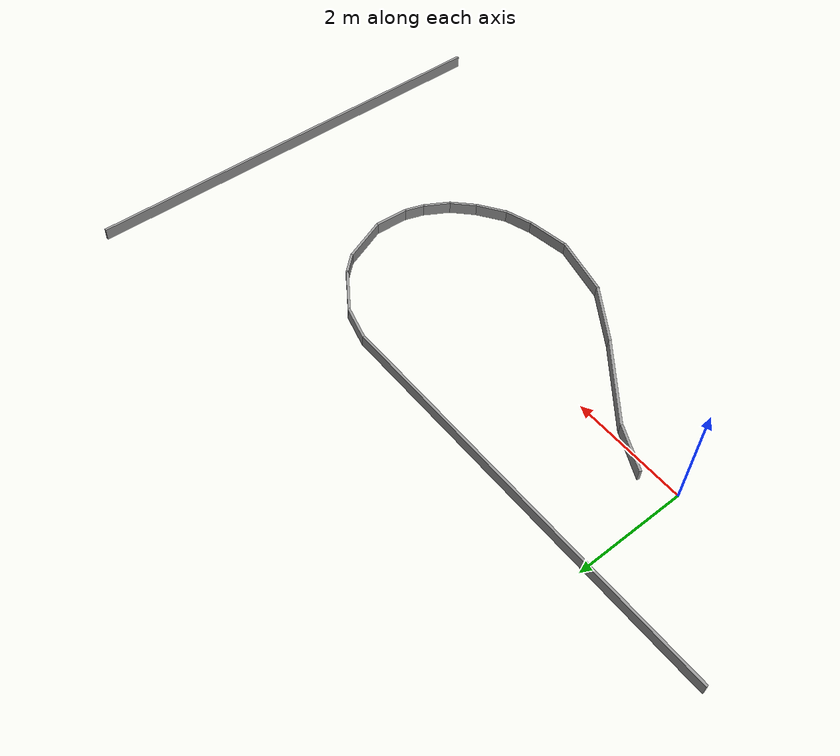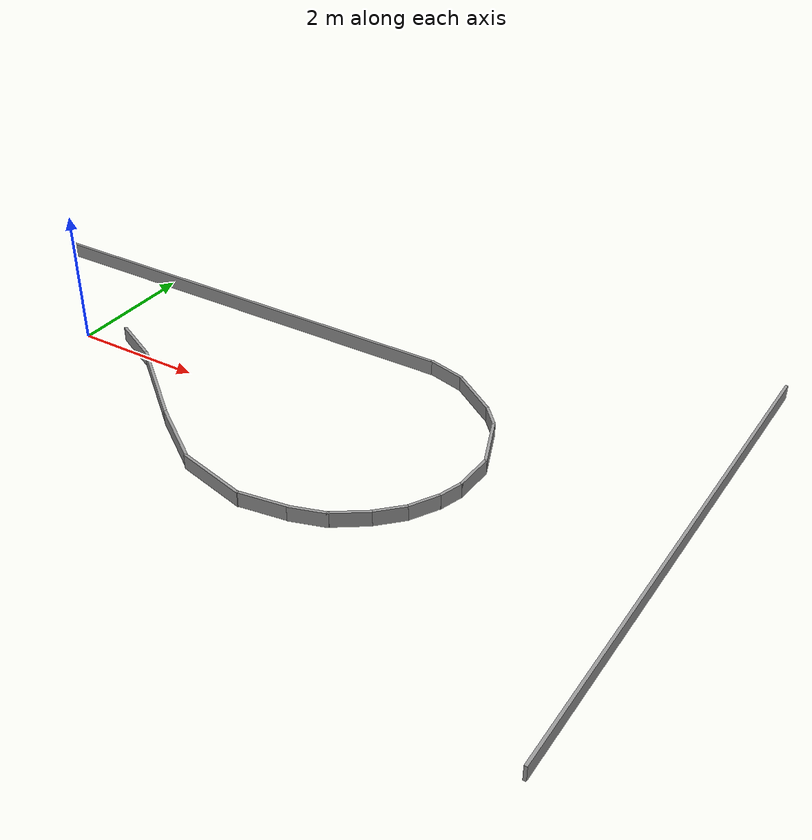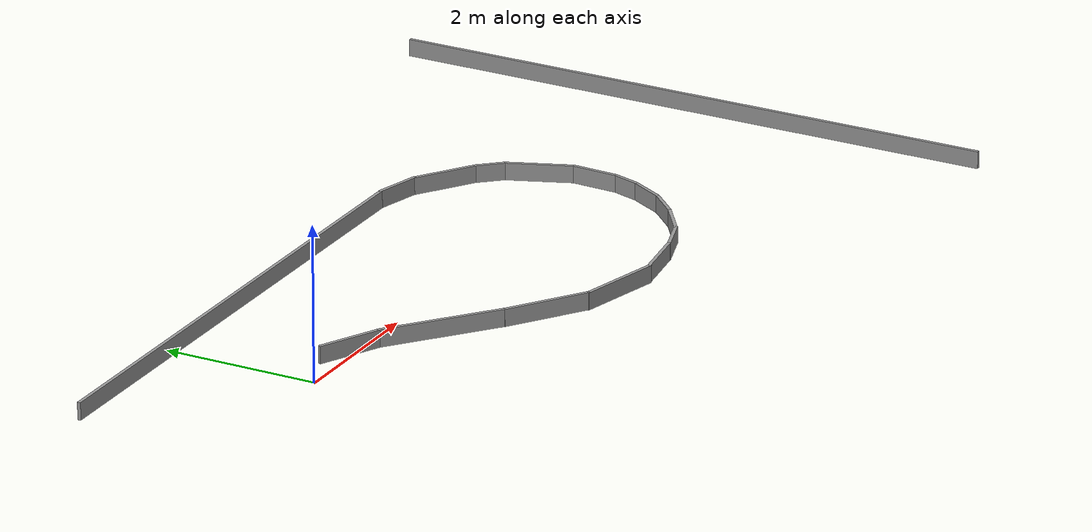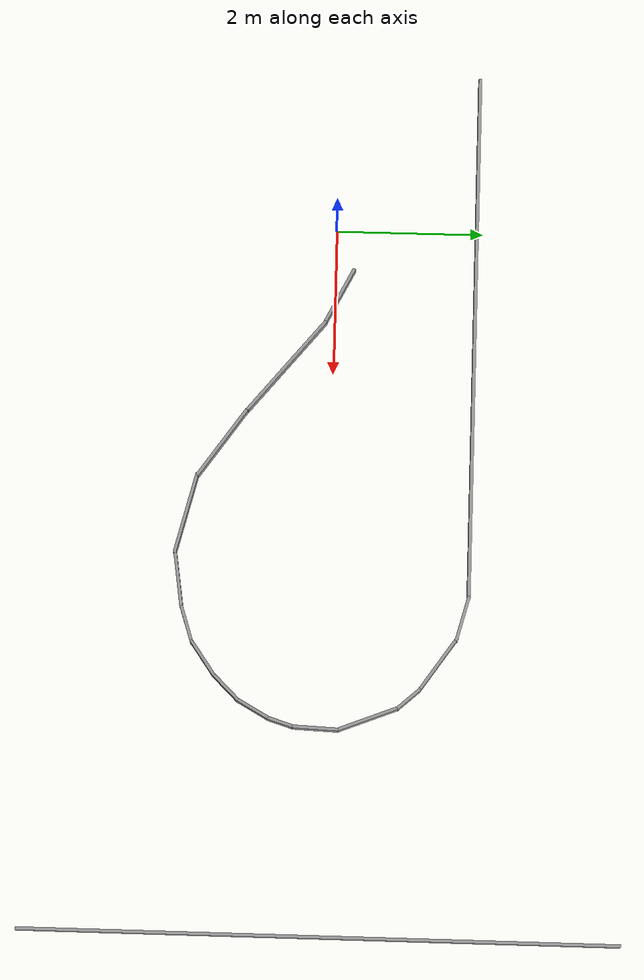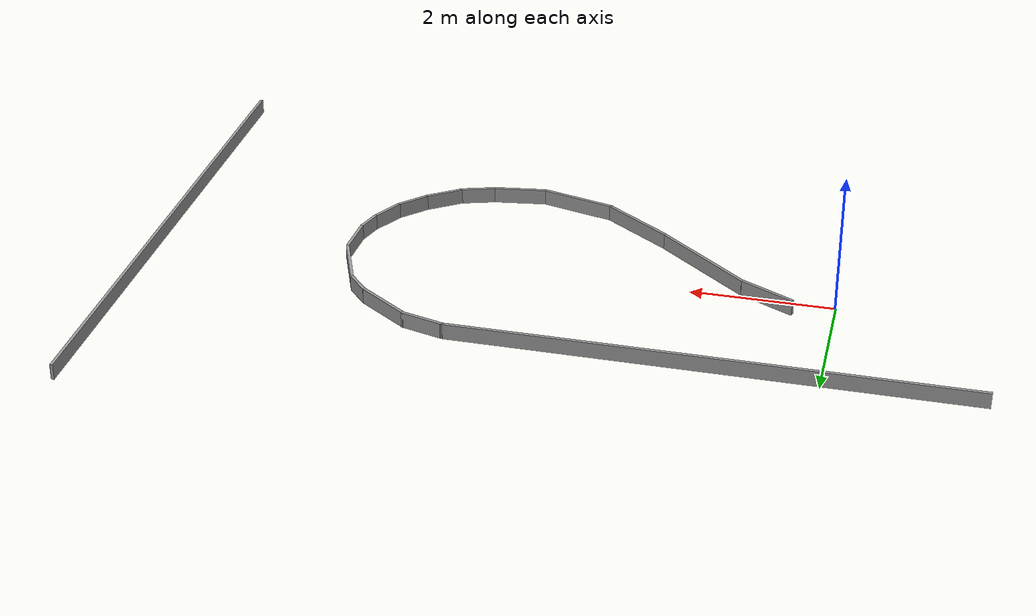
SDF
<sdf version="1.5">
 <world name="default">
  <model name="grey_wall_6">
   <link name="link">
    <pose>-0.467859 -0.097477 1.4 0 -0 0.009516</pose>
    <inertial>
     <inertia><ixx>nan</ixx><ixy>0</ixy><ixz>0</ixz><iyy>nan</iyy><iyz>0</iyz><izz>nan</izz></inertia>
     <mass>0</mass>
    </inertial>
    <visual name="visual">
     <cast_shadows>0</cast_shadows>
     <geometry><box><size>8.07319 0.043266 0.226147</size></box></geometry>
     <material>
      <script>
       <uri>model://grey_wall/materials/scripts</uri>
       <uri>model://grey_wall/materials/textures</uri>
       <name>vrc/grey_wall</name>
      </script>
      <ambient>1 1 1 1</ambient>
      <diffuse>1 1 1 1</diffuse>
      <specular>0 0 0 1</specular>
      <emissive>0 0 0 1</emissive>
     </material>
    </visual>
    <collision name="collision">
     <geometry><box><size>8.07319 0.043266 0.226147</size></box></geometry>
     <surface>
      <friction>
       <ode><mu>1</mu><mu2>1</mu2><fdir1>0 0 0</fdir1><slip1>0</slip1><slip2>0</slip2></ode>
       <torsional>
        <coefficient>1</coefficient>
        <patch_radius>0</patch_radius>
        <surface_radius>0</surface_radius>
        <use_patch_radius>1</use_patch_radius>
        <ode><slip>0</slip></ode>
       </torsional>
      </friction>
      <bounce><restitution_coefficient>0</restitution_coefficient><threshold>1e+06</threshold></bounce>
      <contact>
       <collide_without_contact>0</collide_without_contact>
       <collide_without_contact_bitmask>1</collide_without_contact_bitmask>
       <collide_bitmask>1</collide_bitmask>
       <ode>
        <soft_cfm>0</soft_cfm>
        <soft_erp>0.2</soft_erp>
        <kp>1e+13</kp>
        <kd>1</kd>
        <max_vel>0.01</max_vel>
        <min_depth>0</min_depth>
       </ode>
       <bullet>
        <split_impulse>1</split_impulse>
        <split_impulse_penetration_threshold>-0.01</split_impulse_penetration_threshold>
        <soft_cfm>0</soft_cfm>
        <soft_erp>0.2</soft_erp>
        <kp>1e+13</kp>
        <kd>1</kd>
       </bullet>
      </contact>
     </surface>
    </collision>
   </link>
   <static>1</static>
   <pose>9.55959 0.474995 -1.30963 0 -0 1.55954</pose>
  </model>
  <model name="grey_wall_17">
   <link name="link">
    <pose>0 0 1.4 0 -0 0</pose>
    <inertial>
     <inertia><ixx>nan</ixx><ixy>0</ixy><ixz>0</ixz><iyy>nan</iyy><iyz>0</iyz><izz>nan</izz></inertia>
     <mass>0</mass>
    </inertial>
    <visual name="visual">
     <cast_shadows>0</cast_shadows>
     <geometry><box><size>7.20978 0.043266 0.226147</size></box></geometry>
     <material>
      <script>
       <uri>model://grey_wall/materials/scripts</uri>
       <uri>model://grey_wall/materials/textures</uri>
       <name>vrc/grey_wall</name>
      </script>
      <ambient>1 1 1 1</ambient>
      <diffuse>1 1 1 1</diffuse>
      <specular>0 0 0 1</specular>
      <emissive>0 0 0 1</emissive>
     </material>
    </visual>
    <collision name="collision">
     <geometry><box><size>7.20978 0.043266 0.226147</size></box></geometry>
     <surface>
      <friction>
       <ode><mu>1</mu><mu2>1</mu2><fdir1>0 0 0</fdir1><slip1>0</slip1><slip2>0</slip2></ode>
       <torsional>
        <coefficient>1</coefficient>
        <patch_radius>0</patch_radius>
        <surface_radius>0</surface_radius>
        <use_patch_radius>1</use_patch_radius>
        <ode><slip>0</slip></ode>
       </torsional>
      </friction>
      <bounce><restitution_coefficient>0</restitution_coefficient><threshold>1e+06</threshold></bounce>
      <contact>
       <collide_without_contact>0</collide_without_contact>
       <collide_without_contact_bitmask>1</collide_without_contact_bitmask>
       <collide_bitmask>1</collide_bitmask>
       <ode>
        <soft_cfm>0</soft_cfm>
        <soft_erp>0.2</soft_erp>
        <kp>1e+13</kp>
        <kd>1</kd>
        <max_vel>0.01</max_vel>
        <min_depth>0</min_depth>
       </ode>
       <bullet>
        <split_impulse>1</split_impulse>
        <split_impulse_penetration_threshold>-0.01</split_impulse_penetration_threshold>
        <soft_cfm>0</soft_cfm>
        <soft_erp>0.2</soft_erp>
        <kp>1e+13</kp>
        <kd>1</kd>
       </bullet>
      </contact>
     </surface>
    </collision>
   </link>
   <static>1</static>
   <pose>1.44796 1.9115 -1.30759 0 -0 0</pose>
  </model>
  <model name="grey_wall_28">
   <link name="link">
    <pose>0 0 1.4 0 0 -0.690491</pose>
    <inertial>
     <inertia><ixx>nan</ixx><ixy>0</ixy><ixz>0</ixz><iyy>nan</iyy><iyz>0</iyz><izz>nan</izz></inertia>
     <mass>0</mass>
    </inertial>
    <visual name="visual">
     <cast_shadows>0</cast_shadows>
     <geometry><box><size>1.62445 0.043266 0.226147</size></box></geometry>
     <material>
      <script>
       <uri>model://grey_wall/materials/scripts</uri>
       <uri>model://grey_wall/materials/textures</uri>
       <name>vrc/grey_wall</name>
      </script>
      <ambient>1 1 1 1</ambient>
      <diffuse>1 1 1 1</diffuse>
      <specular>0 0 0 1</specular>
      <emissive>0 0 0 1</emissive>
     </material>
    </visual>
    <collision name="collision">
     <geometry><box><size>1.62445 0.043266 0.226147</size></box></geometry>
     <surface>
      <friction>
       <ode><mu>1</mu><mu2>1</mu2><fdir1>0 0 0</fdir1><slip1>0</slip1><slip2>0</slip2></ode>
       <torsional>
        <coefficient>1</coefficient>
        <patch_radius>0</patch_radius>
        <surface_radius>0</surface_radius>
        <use_patch_radius>1</use_patch_radius>
        <ode><slip>0</slip></ode>
       </torsional>
      </friction>
      <bounce><restitution_coefficient>0</restitution_coefficient><threshold>1e+06</threshold></bounce>
      <contact>
       <collide_without_contact>0</collide_without_contact>
       <collide_without_contact_bitmask>1</collide_without_contact_bitmask>
       <collide_bitmask>1</collide_bitmask>
       <ode>
        <soft_cfm>0</soft_cfm>
        <soft_erp>0.2</soft_erp>
        <kp>1e+13</kp>
        <kd>1</kd>
        <max_vel>0.01</max_vel>
        <min_depth>0</min_depth>
       </ode>
       <bullet>
        <split_impulse>1</split_impulse>
        <split_impulse_penetration_threshold>-0.01</split_impulse_penetration_threshold>
        <soft_cfm>0</soft_cfm>
        <soft_erp>0.2</soft_erp>
        <kp>1e+13</kp>
        <kd>1</kd>
       </bullet>
      </contact>
     </surface>
    </collision>
   </link>
   <static>1</static>
   <pose>1.9243 -0.636533 -1.30469 0 -0 0</pose>
  </model>
  <model name="grey_wall_29">
   <link name="link">
    <pose>0.513561 -0.234559 1.4 0 0 -0.470145</pose>
    <inertial>
     <inertia><ixx>nan</ixx><ixy>0</ixy><ixz>0</ixz><iyy>nan</iyy><iyz>0</iyz><izz>nan</izz></inertia>
     <mass>0</mass>
    </inertial>
    <visual name="visual">
     <cast_shadows>0</cast_shadows>
     <geometry><box><size>0.850335 0.043266 0.226147</size></box></geometry>
     <material>
      <script>
       <uri>model://grey_wall/materials/scripts</uri>
       <uri>model://grey_wall/materials/textures</uri>
       <name>vrc/grey_wall</name>
      </script>
      <ambient>1 1 1 1</ambient>
      <diffuse>1 1 1 1</diffuse>
      <specular>0 0 0 1</specular>
      <emissive>0 0 0 1</emissive>
     </material>
    </visual>
    <collision name="collision">
     <geometry><box><size>0.850335 0.043266 0.226147</size></box></geometry>
     <surface>
      <friction>
       <ode><mu>1</mu><mu2>1</mu2><fdir1>0 0 0</fdir1><slip1>0</slip1><slip2>0</slip2></ode>
       <torsional>
        <coefficient>1</coefficient>
        <patch_radius>0</patch_radius>
        <surface_radius>0</surface_radius>
        <use_patch_radius>1</use_patch_radius>
        <ode><slip>0</slip></ode>
       </torsional>
      </friction>
      <bounce><restitution_coefficient>0</restitution_coefficient><threshold>1e+06</threshold></bounce>
      <contact>
       <collide_without_contact>0</collide_without_contact>
       <collide_without_contact_bitmask>1</collide_without_contact_bitmask>
       <collide_bitmask>1</collide_bitmask>
       <ode>
        <soft_cfm>0</soft_cfm>
        <soft_erp>0.2</soft_erp>
        <kp>1e+13</kp>
        <kd>1</kd>
        <max_vel>0.01</max_vel>
        <min_depth>0</min_depth>
       </ode>
       <bullet>
        <split_impulse>1</split_impulse>
        <split_impulse_penetration_threshold>-0.01</split_impulse_penetration_threshold>
        <soft_cfm>0</soft_cfm>
        <soft_erp>0.2</soft_erp>
        <kp>1e+13</kp>
        <kd>1</kd>
       </bullet>
      </contact>
     </surface>
    </collision>
   </link>
   <static>1</static>
   <pose>0.423351 0.292484 -1.30552 0 -0 0</pose>
  </model>
  <model name="grey_wall_31">
   <link name="link">
    <pose>-0.158404 0.045001 1.4 0 0 -0.613938</pose>
    <inertial>
     <inertia><ixx>nan</ixx><ixy>0</ixy><ixz>0</ixz><iyy>nan</iyy><iyz>0</iyz><izz>nan</izz></inertia>
     <mass>0</mass>
    </inertial>
    <visual name="visual">
     <cast_shadows>0</cast_shadows>
     <geometry><box><size>1.13903 0.043266 0.226147</size></box></geometry>
     <material>
      <script>
       <uri>model://grey_wall/materials/scripts</uri>
       <uri>model://grey_wall/materials/textures</uri>
       <name>vrc/grey_wall</name>
      </script>
      <ambient>1 1 1 1</ambient>
      <diffuse>1 1 1 1</diffuse>
      <specular>0 0 0 1</specular>
      <emissive>0 0 0 1</emissive>
     </material>
    </visual>
    <collision name="collision">
     <geometry><box><size>1.13903 0.043266 0.226147</size></box></geometry>
     <surface>
      <friction>
       <ode><mu>1</mu><mu2>1</mu2><fdir1>0 0 0</fdir1><slip1>0</slip1><slip2>0</slip2></ode>
       <torsional>
        <coefficient>1</coefficient>
        <patch_radius>0</patch_radius>
        <surface_radius>0</surface_radius>
        <use_patch_radius>1</use_patch_radius>
        <ode><slip>0</slip></ode>
       </torsional>
      </friction>
      <bounce><restitution_coefficient>0</restitution_coefficient><threshold>1e+06</threshold></bounce>
      <contact>
       <collide_without_contact>0</collide_without_contact>
       <collide_without_contact_bitmask>1</collide_without_contact_bitmask>
       <collide_bitmask>1</collide_bitmask>
       <ode>
        <soft_cfm>0</soft_cfm>
        <soft_erp>0.2</soft_erp>
        <kp>1e+13</kp>
        <kd>1</kd>
        <max_vel>0.01</max_vel>
        <min_depth>0</min_depth>
       </ode>
       <bullet>
        <split_impulse>1</split_impulse>
        <split_impulse_penetration_threshold>-0.01</split_impulse_penetration_threshold>
        <soft_cfm>0</soft_cfm>
        <soft_erp>0.2</soft_erp>
        <kp>1e+13</kp>
        <kd>1</kd>
       </bullet>
      </contact>
     </surface>
    </collision>
   </link>
   <static>1</static>
   <pose>3.16473 -1.52452 -1.30469 0 -0 0</pose>
  </model>
  <model name="grey_wall_49">
   <link name="link">
    <pose>0.087284 -0.311828 1.4 0 -0 1.9441</pose>
    <inertial>
     <inertia><ixx>nan</ixx><ixy>0</ixy><ixz>0</ixz><iyy>nan</iyy><iyz>0</iyz><izz>nan</izz></inertia>
     <mass>0</mass>
    </inertial>
    <visual name="visual">
     <cast_shadows>0</cast_shadows>
     <geometry><box><size>0.873424 0.043266 0.226147</size></box></geometry>
     <material>
      <script>
       <uri>model://grey_wall/materials/scripts</uri>
       <uri>model://grey_wall/materials/textures</uri>
       <name>vrc/grey_wall</name>
      </script>
      <ambient>1 1 1 1</ambient>
      <diffuse>1 1 1 1</diffuse>
      <specular>0 0 0 1</specular>
      <emissive>0 0 0 1</emissive>
     </material>
    </visual>
    <collision name="collision">
     <geometry><box><size>0.873424 0.043266 0.226147</size></box></geometry>
     <surface>
      <friction>
       <ode><mu>1</mu><mu2>1</mu2><fdir1>0 0 0</fdir1><slip1>0</slip1><slip2>0</slip2></ode>
       <torsional>
        <coefficient>1</coefficient>
        <patch_radius>0</patch_radius>
        <surface_radius>0</surface_radius>
        <use_patch_radius>1</use_patch_radius>
        <ode><slip>0</slip></ode>
       </torsional>
      </friction>
      <bounce><restitution_coefficient>0</restitution_coefficient><threshold>1e+06</threshold></bounce>
      <contact>
       <collide_without_contact>0</collide_without_contact>
       <collide_without_contact_bitmask>1</collide_without_contact_bitmask>
       <collide_bitmask>1</collide_bitmask>
       <ode>
        <soft_cfm>0</soft_cfm>
        <soft_erp>0.2</soft_erp>
        <kp>1e+13</kp>
        <kd>1</kd>
        <max_vel>0.01</max_vel>
        <min_depth>0</min_depth>
       </ode>
       <bullet>
        <split_impulse>1</split_impulse>
        <split_impulse_penetration_threshold>-0.01</split_impulse_penetration_threshold>
        <soft_cfm>0</soft_cfm>
        <soft_erp>0.2</soft_erp>
        <kp>1e+13</kp>
        <kd>1</kd>
       </bullet>
      </contact>
     </surface>
    </collision>
   </link>
   <static>1</static>
   <pose>6.62902 0.902083 -1.30539 0 -0 0</pose>
  </model>
  <model name="grey_wall_50">
   <link name="link">
    <pose>-0.224311 -0.28849 1.4 0 0 -0.60566</pose>
    <inertial>
     <inertia><ixx>nan</ixx><ixy>0</ixy><ixz>0</ixz><iyy>nan</iyy><iyz>0</iyz><izz>nan</izz></inertia>
     <mass>0</mass>
    </inertial>
    <visual name="visual">
     <cast_shadows>0</cast_shadows>
     <geometry><box><size>0.86914 0.043266 0.226147</size></box></geometry>
     <material>
      <script>
       <uri>model://grey_wall/materials/scripts</uri>
       <uri>model://grey_wall/materials/textures</uri>
       <name>vrc/grey_wall</name>
      </script>
      <ambient>1 1 1 1</ambient>
      <diffuse>1 1 1 1</diffuse>
      <specular>0 0 0 1</specular>
      <emissive>0 0 0 1</emissive>
     </material>
    </visual>
    <collision name="collision">
     <geometry><box><size>0.86914 0.043266 0.226147</size></box></geometry>
     <surface>
      <friction>
       <ode><mu>1</mu><mu2>1</mu2><fdir1>0 0 0</fdir1><slip1>0</slip1><slip2>0</slip2></ode>
       <torsional>
        <coefficient>1</coefficient>
        <patch_radius>0</patch_radius>
        <surface_radius>0</surface_radius>
        <use_patch_radius>1</use_patch_radius>
        <ode><slip>0</slip></ode>
       </torsional>
      </friction>
      <bounce><restitution_coefficient>0</restitution_coefficient><threshold>1e+06</threshold></bounce>
      <contact>
       <collide_without_contact>0</collide_without_contact>
       <collide_without_contact_bitmask>1</collide_without_contact_bitmask>
       <collide_bitmask>1</collide_bitmask>
       <ode>
        <soft_cfm>0</soft_cfm>
        <soft_erp>0.2</soft_erp>
        <kp>1e+13</kp>
        <kd>1</kd>
        <max_vel>0.01</max_vel>
        <min_depth>0</min_depth>
       </ode>
       <bullet>
        <split_impulse>1</split_impulse>
        <split_impulse_penetration_threshold>-0.01</split_impulse_penetration_threshold>
        <soft_cfm>0</soft_cfm>
        <soft_erp>0.2</soft_erp>
        <kp>1e+13</kp>
        <kd>1</kd>
       </bullet>
      </contact>
     </surface>
    </collision>
   </link>
   <static>1</static>
   <pose>6.17778 1.80909 -1.30539 0 -0 0</pose>
  </model>
  <model name="grey_wall_51">
   <link name="link">
    <pose>-0.1172 -0.224507 1.4 0 0 -0.843423</pose>
    <inertial>
     <inertia><ixx>nan</ixx><ixy>0</ixy><ixz>0</ixz><iyy>nan</iyy><iyz>0</iyz><izz>nan</izz></inertia>
     <mass>0</mass>
    </inertial>
    <visual name="visual">
     <cast_shadows>0</cast_shadows>
     <geometry><box><size>0.405649 0.043266 0.226147</size></box></geometry>
     <material>
      <script>
       <uri>model://grey_wall/materials/scripts</uri>
       <uri>model://grey_wall/materials/textures</uri>
       <name>vrc/grey_wall</name>
      </script>
      <ambient>1 1 1 1</ambient>
      <diffuse>1 1 1 1</diffuse>
      <specular>0 0 0 1</specular>
      <emissive>0 0 0 1</emissive>
     </material>
    </visual>
    <collision name="collision">
     <geometry><box><size>0.405649 0.043266 0.226147</size></box></geometry>
     <surface>
      <friction>
       <ode><mu>1</mu><mu2>1</mu2><fdir1>0 0 0</fdir1><slip1>0</slip1><slip2>0</slip2></ode>
       <torsional>
        <coefficient>1</coefficient>
        <patch_radius>0</patch_radius>
        <surface_radius>0</surface_radius>
        <use_patch_radius>1</use_patch_radius>
        <ode><slip>0</slip></ode>
       </torsional>
      </friction>
      <bounce><restitution_coefficient>0</restitution_coefficient><threshold>1e+06</threshold></bounce>
      <contact>
       <collide_without_contact>0</collide_without_contact>
       <collide_without_contact_bitmask>1</collide_without_contact_bitmask>
       <collide_bitmask>1</collide_bitmask>
       <ode>
        <soft_cfm>0</soft_cfm>
        <soft_erp>0.2</soft_erp>
        <kp>1e+13</kp>
        <kd>1</kd>
        <max_vel>0.01</max_vel>
        <min_depth>0</min_depth>
       </ode>
       <bullet>
        <split_impulse>1</split_impulse>
        <split_impulse_penetration_threshold>-0.01</split_impulse_penetration_threshold>
        <soft_cfm>0</soft_cfm>
        <soft_erp>0.2</soft_erp>
        <kp>1e+13</kp>
        <kd>1</kd>
       </bullet>
      </contact>
     </surface>
    </collision>
   </link>
   <static>1</static>
   <pose>6.54784 1.36215 -1.30539 0 -0 0</pose>
  </model>
  <model name="grey_wall_54">
   <link name="link">
    <pose>-0.058875 0.005144 1.4 0 0 -0.260101</pose>
    <inertial>
     <inertia><ixx>nan</ixx><ixy>0</ixy><ixz>0</ixz><iyy>nan</iyy><iyz>0</iyz><izz>nan</izz></inertia>
     <mass>0</mass>
    </inertial>
    <visual name="visual">
     <cast_shadows>0</cast_shadows>
     <geometry><box><size>0.633914 0.043266 0.226147</size></box></geometry>
     <material>
      <script>
       <uri>model://grey_wall/materials/scripts</uri>
       <uri>model://grey_wall/materials/textures</uri>
       <name>vrc/grey_wall</name>
      </script>
      <ambient>1 1 1 1</ambient>
      <diffuse>1 1 1 1</diffuse>
      <specular>0 0 0 1</specular>
      <emissive>0 0 0 1</emissive>
     </material>
    </visual>
    <collision name="collision">
     <geometry><box><size>0.633914 0.043266 0.226147</size></box></geometry>
     <surface>
      <friction>
       <ode><mu>1</mu><mu2>1</mu2><fdir1>0 0 0</fdir1><slip1>0</slip1><slip2>0</slip2></ode>
       <torsional>
        <coefficient>1</coefficient>
        <patch_radius>0</patch_radius>
        <surface_radius>0</surface_radius>
        <use_patch_radius>1</use_patch_radius>
        <ode><slip>0</slip></ode>
       </torsional>
      </friction>
      <bounce><restitution_coefficient>0</restitution_coefficient><threshold>1e+06</threshold></bounce>
      <contact>
       <collide_without_contact>0</collide_without_contact>
       <collide_without_contact_bitmask>1</collide_without_contact_bitmask>
       <collide_bitmask>1</collide_bitmask>
       <ode>
        <soft_cfm>0</soft_cfm>
        <soft_erp>0.2</soft_erp>
        <kp>1e+13</kp>
        <kd>1</kd>
        <max_vel>0.01</max_vel>
        <min_depth>0</min_depth>
       </ode>
       <bullet>
        <split_impulse>1</split_impulse>
        <split_impulse_penetration_threshold>-0.01</split_impulse_penetration_threshold>
        <soft_cfm>0</soft_cfm>
        <soft_erp>0.2</soft_erp>
        <kp>1e+13</kp>
        <kd>1</kd>
       </bullet>
      </contact>
     </surface>
    </collision>
   </link>
   <static>1</static>
   <pose>5.38328 1.83136 -1.30469 0 -0 0</pose>
  </model>
  <model name="grey_wall_55">
   <link name="link">
    <pose>0.075433 0.797766 1.4 0 -0 1.52816</pose>
    <inertial>
     <inertia><ixx>nan</ixx><ixy>0</ixy><ixz>0</ixz><iyy>nan</iyy><iyz>0</iyz><izz>nan</izz></inertia>
     <mass>0</mass>
    </inertial>
    <visual name="visual">
     <cast_shadows>0</cast_shadows>
     <geometry><box><size>0.618279 0.043266 0.226147</size></box></geometry>
     <material>
      <script>
       <uri>model://grey_wall/materials/scripts</uri>
       <uri>model://grey_wall/materials/textures</uri>
       <name>vrc/grey_wall</name>
      </script>
      <ambient>1 1 1 1</ambient>
      <diffuse>1 1 1 1</diffuse>
      <specular>0 0 0 1</specular>
      <emissive>0 0 0 1</emissive>
     </material>
    </visual>
    <collision name="collision">
     <geometry><box><size>0.618279 0.043266 0.226147</size></box></geometry>
     <surface>
      <friction>
       <ode><mu>1</mu><mu2>1</mu2><fdir1>0 0 0</fdir1><slip1>0</slip1><slip2>0</slip2></ode>
       <torsional>
        <coefficient>1</coefficient>
        <patch_radius>0</patch_radius>
        <surface_radius>0</surface_radius>
        <use_patch_radius>1</use_patch_radius>
        <ode><slip>0</slip></ode>
       </torsional>
      </friction>
      <bounce><restitution_coefficient>0</restitution_coefficient><threshold>1e+06</threshold></bounce>
      <contact>
       <collide_without_contact>0</collide_without_contact>
       <collide_without_contact_bitmask>1</collide_without_contact_bitmask>
       <collide_bitmask>1</collide_bitmask>
       <ode>
        <soft_cfm>0</soft_cfm>
        <soft_erp>0.2</soft_erp>
        <kp>1e+13</kp>
        <kd>1</kd>
        <max_vel>0.01</max_vel>
        <min_depth>0</min_depth>
       </ode>
       <bullet>
        <split_impulse>1</split_impulse>
        <split_impulse_penetration_threshold>-0.01</split_impulse_penetration_threshold>
        <soft_cfm>0</soft_cfm>
        <soft_erp>0.2</soft_erp>
        <kp>1e+13</kp>
        <kd>1</kd>
       </bullet>
      </contact>
     </surface>
    </collision>
   </link>
   <static>1</static>
   <pose>6.78368 -0.908327 -1.30539 0 -0 0</pose>
  </model>
  <model name="grey_wall_56">
   <link name="link">
    <pose>0.262006 0.20349 1.4 0 -0 0.607244</pose>
    <inertial>
     <inertia><ixx>nan</ixx><ixy>0</ixy><ixz>0</ixz><iyy>nan</iyy><iyz>0</iyz><izz>nan</izz></inertia>
     <mass>0</mass>
    </inertial>
    <visual name="visual">
     <cast_shadows>0</cast_shadows>
     <geometry><box><size>0.572378 0.043266 0.226147</size></box></geometry>
     <material>
      <script>
       <uri>model://grey_wall/materials/scripts</uri>
       <uri>model://grey_wall/materials/textures</uri>
       <name>vrc/grey_wall</name>
      </script>
      <ambient>1 1 1 1</ambient>
      <diffuse>1 1 1 1</diffuse>
      <specular>0 0 0 1</specular>
      <emissive>0 0 0 1</emissive>
     </material>
    </visual>
    <collision name="collision">
     <geometry><box><size>0.572378 0.043266 0.226147</size></box></geometry>
     <surface>
      <friction>
       <ode><mu>1</mu><mu2>1</mu2><fdir1>0 0 0</fdir1><slip1>0</slip1><slip2>0</slip2></ode>
       <torsional>
        <coefficient>1</coefficient>
        <patch_radius>0</patch_radius>
        <surface_radius>0</surface_radius>
        <use_patch_radius>1</use_patch_radius>
        <ode><slip>0</slip></ode>
       </torsional>
      </friction>
      <bounce><restitution_coefficient>0</restitution_coefficient><threshold>1e+06</threshold></bounce>
      <contact>
       <collide_without_contact>0</collide_without_contact>
       <collide_without_contact_bitmask>1</collide_without_contact_bitmask>
       <collide_bitmask>1</collide_bitmask>
       <ode>
        <soft_cfm>0</soft_cfm>
        <soft_erp>0.2</soft_erp>
        <kp>1e+13</kp>
        <kd>1</kd>
        <max_vel>0.01</max_vel>
        <min_depth>0</min_depth>
       </ode>
       <bullet>
        <split_impulse>1</split_impulse>
        <split_impulse_penetration_threshold>-0.01</split_impulse_penetration_threshold>
        <soft_cfm>0</soft_cfm>
        <soft_erp>0.2</soft_erp>
        <kp>1e+13</kp>
        <kd>1</kd>
       </bullet>
      </contact>
     </surface>
    </collision>
   </link>
   <static>1</static>
   <pose>5.69053 -1.8541 -1.30539 0 -0 0</pose>
  </model>
  <model name="grey_wall_57">
   <link name="link">
    <pose>0.297568 0.083552 1.4 0 -0 0.144434</pose>
    <inertial>
     <inertia><ixx>nan</ixx><ixy>0</ixy><ixz>0</ixz><iyy>nan</iyy><iyz>0</iyz><izz>nan</izz></inertia>
     <mass>0</mass>
    </inertial>
    <visual name="visual">
     <cast_shadows>0</cast_shadows>
     <geometry><box><size>0.755022 0.043266 0.226147</size></box></geometry>
     <material>
      <script>
       <uri>model://grey_wall/materials/scripts</uri>
       <uri>model://grey_wall/materials/textures</uri>
       <name>vrc/grey_wall</name>
      </script>
      <ambient>1 1 1 1</ambient>
      <diffuse>1 1 1 1</diffuse>
      <specular>0 0 0 1</specular>
      <emissive>0 0 0 1</emissive>
     </material>
    </visual>
    <collision name="collision">
     <geometry><box><size>0.755022 0.043266 0.226147</size></box></geometry>
     <surface>
      <friction>
       <ode><mu>1</mu><mu2>1</mu2><fdir1>0 0 0</fdir1><slip1>0</slip1><slip2>0</slip2></ode>
       <torsional>
        <coefficient>1</coefficient>
        <patch_radius>0</patch_radius>
        <surface_radius>0</surface_radius>
        <use_patch_radius>1</use_patch_radius>
        <ode><slip>0</slip></ode>
       </torsional>
      </friction>
      <bounce><restitution_coefficient>0</restitution_coefficient><threshold>1e+06</threshold></bounce>
      <contact>
       <collide_without_contact>0</collide_without_contact>
       <collide_without_contact_bitmask>1</collide_without_contact_bitmask>
       <collide_bitmask>1</collide_bitmask>
       <ode>
        <soft_cfm>0</soft_cfm>
        <soft_erp>0.2</soft_erp>
        <kp>1e+13</kp>
        <kd>1</kd>
        <max_vel>0.01</max_vel>
        <min_depth>0</min_depth>
       </ode>
       <bullet>
        <split_impulse>1</split_impulse>
        <split_impulse_penetration_threshold>-0.01</split_impulse_penetration_threshold>
        <soft_cfm>0</soft_cfm>
        <soft_erp>0.2</soft_erp>
        <kp>1e+13</kp>
        <kd>1</kd>
       </bullet>
      </contact>
     </surface>
    </collision>
   </link>
   <static>1</static>
   <pose>4.58267 -2.09908 -1.30469 0 -0 0</pose>
  </model>
  <model name="grey_wall_58">
   <link name="link">
    <pose>-0.050483 0.047388 1.4 0 -0 0.310417</pose>
    <inertial>
     <inertia><ixx>nan</ixx><ixy>0</ixy><ixz>0</ixz><iyy>nan</iyy><iyz>0</iyz><izz>nan</izz></inertia>
     <mass>0</mass>
    </inertial>
    <visual name="visual">
     <cast_shadows>0</cast_shadows>
     <geometry><box><size>0.553723 0.043266 0.226147</size></box></geometry>
     <material>
      <script>
       <uri>model://grey_wall/materials/scripts</uri>
       <uri>model://grey_wall/materials/textures</uri>
       <name>vrc/grey_wall</name>
      </script>
      <ambient>1 1 1 1</ambient>
      <diffuse>1 1 1 1</diffuse>
      <specular>0 0 0 1</specular>
      <emissive>0 0 0 1</emissive>
     </material>
    </visual>
    <collision name="collision">
     <geometry><box><size>0.553723 0.043266 0.226147</size></box></geometry>
     <surface>
      <friction>
       <ode><mu>1</mu><mu2>1</mu2><fdir1>0 0 0</fdir1><slip1>0</slip1><slip2>0</slip2></ode>
       <torsional>
        <coefficient>1</coefficient>
        <patch_radius>0</patch_radius>
        <surface_radius>0</surface_radius>
        <use_patch_radius>1</use_patch_radius>
        <ode><slip>0</slip></ode>
       </torsional>
      </friction>
      <bounce><restitution_coefficient>0</restitution_coefficient><threshold>1e+06</threshold></bounce>
      <contact>
       <collide_without_contact>0</collide_without_contact>
       <collide_without_contact_bitmask>1</collide_without_contact_bitmask>
       <collide_bitmask>1</collide_bitmask>
       <ode>
        <soft_cfm>0</soft_cfm>
        <soft_erp>0.2</soft_erp>
        <kp>1e+13</kp>
        <kd>1</kd>
        <max_vel>0.01</max_vel>
        <min_depth>0</min_depth>
       </ode>
       <bullet>
        <split_impulse>1</split_impulse>
        <split_impulse_penetration_threshold>-0.01</split_impulse_penetration_threshold>
        <soft_cfm>0</soft_cfm>
        <soft_erp>0.2</soft_erp>
        <kp>1e+13</kp>
        <kd>1</kd>
       </bullet>
      </contact>
     </surface>
    </collision>
   </link>
   <static>1</static>
   <pose>5.53718 -1.934 -1.30539 0 -0 0</pose>
  </model>
  <model name="grey_wall_59">
   <link name="link">
    <pose>-0.10562 0.058864 1.4 0 0 -0.246763</pose>
    <inertial>
     <inertia><ixx>nan</ixx><ixy>0</ixy><ixz>0</ixz><iyy>nan</iyy><iyz>0</iyz><izz>nan</izz></inertia>
     <mass>0</mass>
    </inertial>
    <visual name="visual">
     <cast_shadows>0</cast_shadows>
     <geometry><box><size>1.12853 0.043266 0.226147</size></box></geometry>
     <material>
      <script>
       <uri>model://grey_wall/materials/scripts</uri>
       <uri>model://grey_wall/materials/textures</uri>
       <name>vrc/grey_wall</name>
      </script>
      <ambient>1 1 1 1</ambient>
      <diffuse>1 1 1 1</diffuse>
      <specular>0 0 0 1</specular>
      <emissive>0 0 0 1</emissive>
     </material>
    </visual>
    <collision name="collision">
     <geometry><box><size>1.12853 0.043266 0.226147</size></box></geometry>
     <surface>
      <friction>
       <ode><mu>1</mu><mu2>1</mu2><fdir1>0 0 0</fdir1><slip1>0</slip1><slip2>0</slip2></ode>
       <torsional>
        <coefficient>1</coefficient>
        <patch_radius>0</patch_radius>
        <surface_radius>0</surface_radius>
        <use_patch_radius>1</use_patch_radius>
        <ode><slip>0</slip></ode>
       </torsional>
      </friction>
      <bounce><restitution_coefficient>0</restitution_coefficient><threshold>1e+06</threshold></bounce>
      <contact>
       <collide_without_contact>0</collide_without_contact>
       <collide_without_contact_bitmask>1</collide_without_contact_bitmask>
       <collide_bitmask>1</collide_bitmask>
       <ode>
        <soft_cfm>0</soft_cfm>
        <soft_erp>0.2</soft_erp>
        <kp>1e+13</kp>
        <kd>1</kd>
        <max_vel>0.01</max_vel>
        <min_depth>0</min_depth>
       </ode>
       <bullet>
        <split_impulse>1</split_impulse>
        <split_impulse_penetration_threshold>-0.01</split_impulse_penetration_threshold>
        <soft_cfm>0</soft_cfm>
        <soft_erp>0.2</soft_erp>
        <kp>1e+13</kp>
        <kd>1</kd>
       </bullet>
      </contact>
     </surface>
    </collision>
   </link>
   <static>1</static>
   <pose>4.09311 -1.99771 -1.30469 0 -0 0</pose>
  </model>
  <model name="grey_wall_60">
   <link name="link">
    <pose>0.02219 0.085361 1.4 0 -0 1.05914</pose>
    <inertial>
     <inertia><ixx>nan</ixx><ixy>0</ixy><ixz>0</ixz><iyy>nan</iyy><iyz>0</iyz><izz>nan</izz></inertia>
     <mass>0</mass>
    </inertial>
    <visual name="visual">
     <cast_shadows>0</cast_shadows>
     <geometry><box><size>0.490047 0.043266 0.226147</size></box></geometry>
     <material>
      <script>
       <uri>model://grey_wall/materials/scripts</uri>
       <uri>model://grey_wall/materials/textures</uri>
       <name>vrc/grey_wall</name>
      </script>
      <ambient>1 1 1 1</ambient>
      <diffuse>1 1 1 1</diffuse>
      <specular>0 0 0 1</specular>
      <emissive>0 0 0 1</emissive>
     </material>
    </visual>
    <collision name="collision">
     <geometry><box><size>0.490047 0.043266 0.226147</size></box></geometry>
     <surface>
      <friction>
       <ode><mu>1</mu><mu2>1</mu2><fdir1>0 0 0</fdir1><slip1>0</slip1><slip2>0</slip2></ode>
       <torsional>
        <coefficient>1</coefficient>
        <patch_radius>0</patch_radius>
        <surface_radius>0</surface_radius>
        <use_patch_radius>1</use_patch_radius>
        <ode><slip>0</slip></ode>
       </torsional>
      </friction>
      <bounce><restitution_coefficient>0</restitution_coefficient><threshold>1e+06</threshold></bounce>
      <contact>
       <collide_without_contact>0</collide_without_contact>
       <collide_without_contact_bitmask>1</collide_without_contact_bitmask>
       <collide_bitmask>1</collide_bitmask>
       <ode>
        <soft_cfm>0</soft_cfm>
        <soft_erp>0.2</soft_erp>
        <kp>1e+13</kp>
        <kd>1</kd>
        <max_vel>0.01</max_vel>
        <min_depth>0</min_depth>
       </ode>
       <bullet>
        <split_impulse>1</split_impulse>
        <split_impulse_penetration_threshold>-0.01</split_impulse_penetration_threshold>
        <soft_cfm>0</soft_cfm>
        <soft_erp>0.2</soft_erp>
        <kp>1e+13</kp>
        <kd>1</kd>
       </bullet>
      </contact>
     </surface>
    </collision>
   </link>
   <static>1</static>
   <pose>6.59865 -1.04057 -1.30539 0 -0 0</pose>
  </model>
  <model name="grey_wall_61">
   <link name="link">
    <pose>0.044074 0.800255 1.4 0 -0 1.2661</pose>
    <inertial>
     <inertia><ixx>nan</ixx><ixy>0</ixy><ixz>0</ixz><iyy>nan</iyy><iyz>0</iyz><izz>nan</izz></inertia>
     <mass>0</mass>
    </inertial>
    <visual name="visual">
     <cast_shadows>0</cast_shadows>
     <geometry><box><size>0.374262 0.043266 0.226147</size></box></geometry>
     <material>
      <script>
       <uri>model://grey_wall/materials/scripts</uri>
       <uri>model://grey_wall/materials/textures</uri>
       <name>vrc/grey_wall</name>
      </script>
      <ambient>1 1 1 1</ambient>
      <diffuse>1 1 1 1</diffuse>
      <specular>0 0 0 1</specular>
      <emissive>0 0 0 1</emissive>
     </material>
    </visual>
    <collision name="collision">
     <geometry><box><size>0.374262 0.043266 0.226147</size></box></geometry>
     <surface>
      <friction>
       <ode><mu>1</mu><mu2>1</mu2><fdir1>0 0 0</fdir1><slip1>0</slip1><slip2>0</slip2></ode>
       <torsional>
        <coefficient>1</coefficient>
        <patch_radius>0</patch_radius>
        <surface_radius>0</surface_radius>
        <use_patch_radius>1</use_patch_radius>
        <ode><slip>0</slip></ode>
       </torsional>
      </friction>
      <bounce><restitution_coefficient>0</restitution_coefficient><threshold>1e+06</threshold></bounce>
      <contact>
       <collide_without_contact>0</collide_without_contact>
       <collide_without_contact_bitmask>1</collide_without_contact_bitmask>
       <collide_bitmask>1</collide_bitmask>
       <ode>
        <soft_cfm>0</soft_cfm>
        <soft_erp>0.2</soft_erp>
        <kp>1e+13</kp>
        <kd>1</kd>
        <max_vel>0.01</max_vel>
        <min_depth>0</min_depth>
       </ode>
       <bullet>
        <split_impulse>1</split_impulse>
        <split_impulse_penetration_threshold>-0.01</split_impulse_penetration_threshold>
        <soft_cfm>0</soft_cfm>
        <soft_erp>0.2</soft_erp>
        <kp>1e+13</kp>
        <kd>1</kd>
       </bullet>
      </contact>
     </surface>
    </collision>
   </link>
   <static>1</static>
   <pose>6.74825 -1.37917 -1.30539 0 -0 0</pose>
  </model>
  <model name="grey_wall_62">
   <link name="link">
    <pose>-0.05021 0.083285 1.4 0 -0 0.790774</pose>
    <inertial>
     <inertia><ixx>nan</ixx><ixy>0</ixy><ixz>0</ixz><iyy>nan</iyy><iyz>0</iyz><izz>nan</izz></inertia>
     <mass>0</mass>
    </inertial>
    <visual name="visual">
     <cast_shadows>0</cast_shadows>
     <geometry><box><size>0.478375 0.043266 0.226147</size></box></geometry>
     <material>
      <script>
       <uri>model://grey_wall/materials/scripts</uri>
       <uri>model://grey_wall/materials/textures</uri>
       <name>vrc/grey_wall</name>
      </script>
      <ambient>1 1 1 1</ambient>
      <diffuse>1 1 1 1</diffuse>
      <specular>0 0 0 1</specular>
      <emissive>0 0 0 1</emissive>
     </material>
    </visual>
    <collision name="collision">
     <geometry><box><size>0.478375 0.043266 0.226147</size></box></geometry>
     <surface>
      <friction>
       <ode><mu>1</mu><mu2>1</mu2><fdir1>0 0 0</fdir1><slip1>0</slip1><slip2>0</slip2></ode>
       <torsional>
        <coefficient>1</coefficient>
        <patch_radius>0</patch_radius>
        <surface_radius>0</surface_radius>
        <use_patch_radius>1</use_patch_radius>
        <ode><slip>0</slip></ode>
       </torsional>
      </friction>
      <bounce><restitution_coefficient>0</restitution_coefficient><threshold>1e+06</threshold></bounce>
      <contact>
       <collide_without_contact>0</collide_without_contact>
       <collide_without_contact_bitmask>1</collide_without_contact_bitmask>
       <collide_bitmask>1</collide_bitmask>
       <ode>
        <soft_cfm>0</soft_cfm>
        <soft_erp>0.2</soft_erp>
        <kp>1e+13</kp>
        <kd>1</kd>
        <max_vel>0.01</max_vel>
        <min_depth>0</min_depth>
       </ode>
       <bullet>
        <split_impulse>1</split_impulse>
        <split_impulse_penetration_threshold>-0.01</split_impulse_penetration_threshold>
        <soft_cfm>0</soft_cfm>
        <soft_erp>0.2</soft_erp>
        <kp>1e+13</kp>
        <kd>1</kd>
       </bullet>
      </contact>
     </surface>
    </collision>
   </link>
   <static>1</static>
   <pose>6.39158 -1.4103 -1.30539 0 -0 0</pose>
  </model>
 </world>
</sdf>
